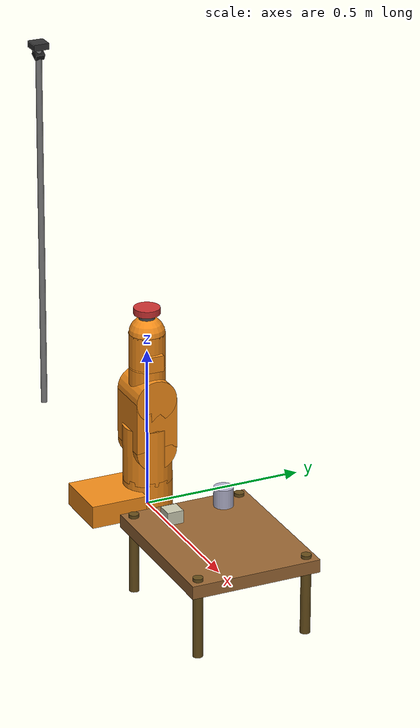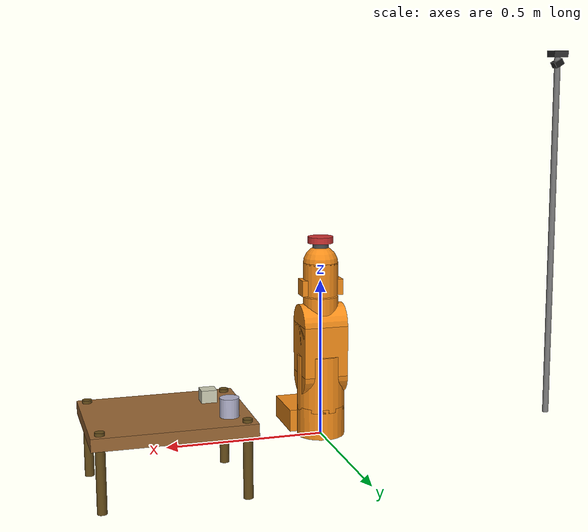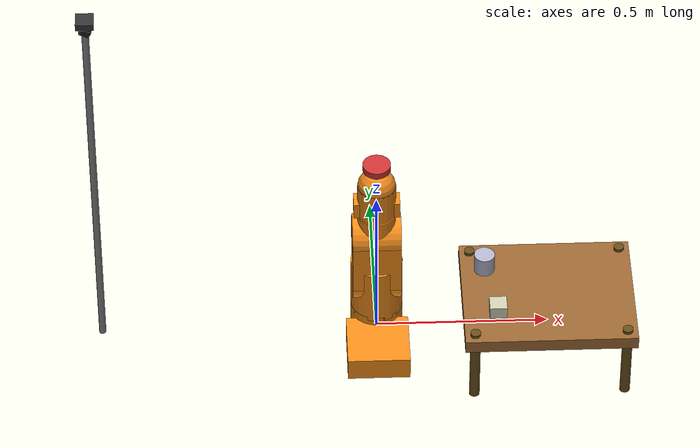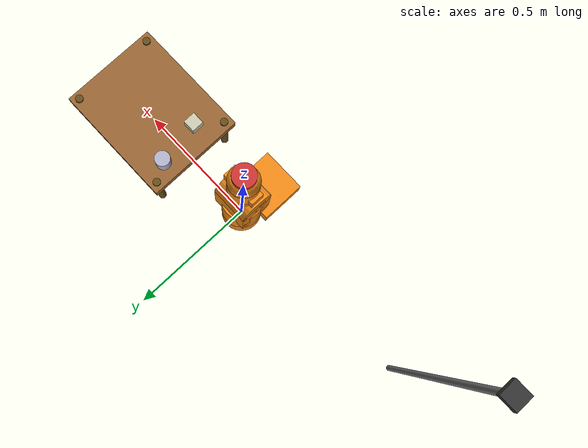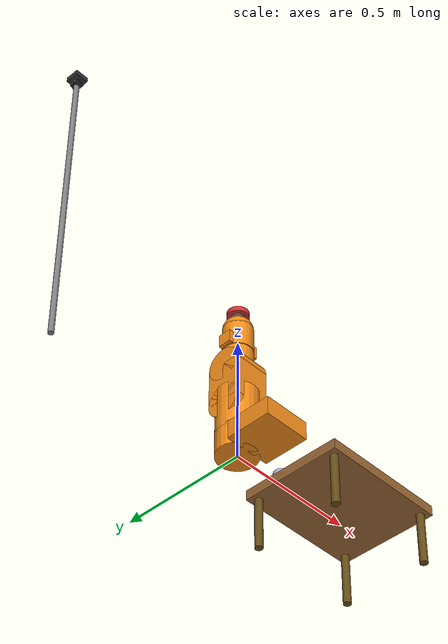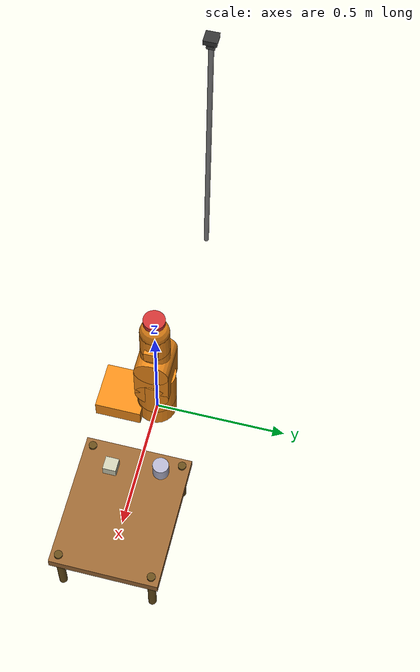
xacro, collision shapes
<?xml version="1.0"?>
<robot xmlns:xacro="http://www.ros.org/wiki/xacro" name="thor_arm">

    <xacro:arg name="is_sim" default="true"/>

    <xacro:include filename="$(find thor_urdf)/urdf/thor_gazebo.xacro" />

    <xacro:include filename="$(find thor_urdf)/urdf/thor_arm.ros2_control.xacro" />

    <xacro:property name="PI" value="3.14159265359" />
    <xacro:property name="effort" value="4.0" />
    <xacro:property name="velocity" value="1.0" />

    <xacro:macro name="default_inertial" params="mass">
        <inertial>
            <origin xyz="0 0 0" rpy="0 0 0"/>
            <mass value="${mass}" />
            <inertia ixx="1.0" ixy="0.0" ixz="0.0"
                     iyy="1.0" iyz="0.0"
                     izz="1.0" />
        </inertial>
    </xacro:macro>

    <!-- LINKS -->
    <link name="world"/>

    <link name="base_link">
        <xacro:default_inertial mass="1.0"/>
        <visual>
            <origin xyz="0 0 0" rpy="0 0 -${PI / 2}"/>
            <geometry>
              <mesh filename="package://thor_urdf/meshes/Base.dae" scale="0.001 0.001 0.001" />
            </geometry>
        </visual>
        <collision>
            <origin xyz="0 0 0.049" rpy="0 0 -${PI / 2}"/>
            <geometry>
                <cylinder radius="0.075" length="0.098"/>
            </geometry>
        </collision>
        <collision>
            <origin xyz="0 -0.1312686 0.035250" rpy="0 0 -${PI / 2}"/>
            <geometry>
                <box size="0.176 0.180 0.0705"/>
            </geometry>
        </collision>
    </link>

    <link name="link_1">
        <xacro:default_inertial mass="1.0"/>
        <visual>
            <origin xyz="0 0 0" rpy="0 0 -${PI / 2}"/>
            <geometry>
              <mesh filename="package://thor_urdf/meshes/Art1.dae" scale="0.001 0.001 0.001" />
            </geometry>
        </visual>
        <collision>
            <origin xyz="0 0 0.0765" rpy="0 0 -${PI / 2}"/>
            <geometry>
                <cylinder radius="0.075" length="0.179"/>
            </geometry>
        </collision>
    </link>

    <link name="link_2">
        <xacro:default_inertial mass="1.0"/>
        <visual>
            <origin xyz="0 0 0" rpy="0 0 -${PI / 2}"/>
            <geometry>
              <mesh filename="package://thor_urdf/meshes/Art2.dae" scale="0.001 0.001 0.001" />
            </geometry>
        </visual>
        <collision>
            <origin xyz="0 0 0" rpy="${PI / 2} 0 -${PI / 2}"/>
            <geometry>
                <cylinder radius="0.065" length="0.140"/>
            </geometry>
        </collision>
        <collision>
            <origin xyz="0 0 0.080" rpy="${PI / 2} 0 -${PI / 2}"/>
            <geometry>
                <box size="0.130 0.160 0.140"/>
            </geometry>
        </collision>
        <collision>
            <origin xyz="0 0 0.160" rpy="${PI / 2} 0 -${PI / 2}"/>
            <geometry>
                <cylinder radius="0.065" length="0.140"/>
            </geometry>
        </collision>
    </link>

    <link name="link_3">
        <xacro:default_inertial mass="1.0"/>
        <visual>
            <origin xyz="0 0 0" rpy="0 0 -${PI / 2}"/>
            <geometry>
              <mesh filename="package://thor_urdf/meshes/Art3.dae" scale="0.001 0.001 0.001" />
            </geometry>
        </visual>
        <collision>
            <origin xyz="0 0 0.01225" rpy="0 0 -${PI / 2}"/>
            <geometry>
                <cylinder radius="0.055" length="0.1525"/>
            </geometry>
        </collision>
    </link>

    <link name="link_4">
        <xacro:default_inertial mass="1.0"/>
        <visual>
            <origin xyz="0 0 0" rpy="0 0 -${PI / 2}"/>
            <geometry>
              <mesh filename="package://thor_urdf/meshes/Art4.dae" scale="0.001 0.001 0.001" />
            </geometry>
        </visual>
        <collision>
            <origin xyz="0 0 0.1045" rpy="0 0 -${PI / 2}"/>
            <geometry>
                <sphere radius="0.055"/>
            </geometry>
        </collision>
        <collision>
            <origin xyz="0 0 0.05525" rpy="0 0 -${PI / 2}"/>
            <geometry>
                <cylinder radius="0.055" length="0.1045"/>
            </geometry>
        </collision>
        <collision>
            <origin xyz="0 0 0.0295" rpy="0 0 -${PI / 2}"/>
            <geometry>
                <box size="0.050 0.132 0.050"/>
            </geometry>
        </collision>
    </link>

    <link name="link_5">
        <xacro:default_inertial mass="1.0"/>
        <visual>
            <origin xyz="0 0 0" rpy="0 0 -${PI / 2}"/>
            <geometry>
                <mesh filename="package://thor_urdf/meshes/Art5.dae" scale="0.001 0.001 0.001" />
            </geometry>
        </visual>
        <collision>
            <origin xyz="0 0 0" rpy="${PI / 2} 0 -${PI / 2}"/>
            <geometry>
                <cylinder radius="0.047" length="0.03"/>
            </geometry>
        </collision>
    </link>

    <link name="link_6">
        <xacro:default_inertial mass="1.0"/>
        <visual>
            <origin xyz="0 0 0" rpy="0 0 -${PI / 2}"/>
            <geometry>
                <mesh filename="package://thor_urdf/meshes/Art6.dae" scale="0.001 0.001 0.001" />
            </geometry>
        </visual>
        <collision>
            <origin xyz="0 0 0.025" rpy="0 0 -${PI / 2}"/>
            <geometry>
                <cylinder radius="0.015" length="0.05"/>
            </geometry>
        </collision>
    </link>

    <link name="electromagnet_mount">
        <xacro:default_inertial mass="0.2"/>
        <visual>
            <origin xyz="0 0 0" rpy="0 0 0"/>
            <geometry>
                <cylinder radius="0.025" length="0.015"/>
            </geometry>
            <material name="mount_material">
                <color rgba="0.3 0.3 0.3 1.0"/>
            </material>
        </visual>
        <collision>
            <origin xyz="0 0 0" rpy="0 0 0"/>
            <geometry>
                <cylinder radius="0.025" length="0.015"/>
            </geometry>
        </collision>
    </link>

    <link name="electromagnet_plate">
        <xacro:default_inertial mass="0.4"/>
        <visual>
            <origin xyz="0 0 0" rpy="0 0 0"/>
            <geometry>
                <cylinder radius="0.04" length="0.02"/>
            </geometry>
            <material name="magnet_material">
                <color rgba="0.8 0.2 0.2 1.0"/>
            </material>
        </visual>
        <collision>
            <origin xyz="0 0 0" rpy="0 0 0"/>
            <geometry>
                <cylinder radius="0.04" length="0.02"/>
            </geometry>
        </collision>
    </link>

    <link name="table_base">
        <inertial>
            <origin xyz="0 0 0" rpy="0 0 0"/>
            <mass value="10.0" />
            <inertia ixx="0.147" ixy="0.0" ixz="0.0"
                     iyy="0.213" iyz="0.0"
                     izz="0.347" />
        </inertial>
        <visual>
            <origin xyz="0 0 0" rpy="0 0 0"/>
            <geometry>
                <box size="0.5 0.4 0.04"/>
            </geometry>
            <material name="table_material">
                <color rgba="0.6 0.4 0.2 1.0"/>
            </material>
        </visual>
        <collision>
            <origin xyz="0 0 0" rpy="0 0 0"/>
            <geometry>
                <box size="0.5 0.4 0.04"/>
            </geometry>
        </collision>
    </link>

    <link name="table_leg_1">
        <inertial>
            <origin xyz="0 0 0" rpy="0 0 0"/>
            <mass value="2.0" />
            <inertia ixx="0.0085" ixy="0.0" ixz="0.0"
                     iyy="0.0085" iyz="0.0"
                     izz="0.0006" />
        </inertial>
        <visual>
            <origin xyz="0 0 0" rpy="0 0 0"/>
            <geometry>
                <cylinder radius="0.015" length="0.25"/>
            </geometry>
            <material name="leg_material">
                <color rgba="0.4 0.3 0.1 1.0"/>
            </material>
        </visual>
        <collision>
            <origin xyz="0 0 0" rpy="0 0 0"/>
            <geometry>
                <cylinder radius="0.015" length="0.25"/>
            </geometry>
        </collision>
    </link>

    <link name="table_leg_2">
        <inertial>
            <origin xyz="0 0 0" rpy="0 0 0"/>
            <mass value="2.0" />
            <inertia ixx="0.0085" ixy="0.0" ixz="0.0"
                     iyy="0.0085" iyz="0.0"
                     izz="0.0006" />
        </inertial>
        <visual>
            <origin xyz="0 0 0" rpy="0 0 0"/>
            <geometry>
                <cylinder radius="0.015" length="0.25"/>
            </geometry>
            <material name="leg_material">
                <color rgba="0.4 0.3 0.1 1.0"/>
            </material>
        </visual>
        <collision>
            <origin xyz="0 0 0" rpy="0 0 0"/>
            <geometry>
                <cylinder radius="0.015" length="0.25"/>
            </geometry>
        </collision>
    </link>

    <link name="table_leg_3">
        <inertial>
            <origin xyz="0 0 0" rpy="0 0 0"/>
            <mass value="2.0" />
            <inertia ixx="0.0085" ixy="0.0" ixz="0.0"
                     iyy="0.0085" iyz="0.0"
                     izz="0.0006" />
        </inertial>
        <visual>
            <origin xyz="0 0 0" rpy="0 0 0"/>
            <geometry>
                <cylinder radius="0.015" length="0.25"/>
            </geometry>
            <material name="leg_material">
                <color rgba="0.4 0.3 0.1 1.0"/>
            </material>
        </visual>
        <collision>
            <origin xyz="0 0 0" rpy="0 0 0"/>
            <geometry>
                <cylinder radius="0.015" length="0.25"/>
            </geometry>
        </collision>
    </link>

    <link name="table_leg_4">
        <inertial>
            <origin xyz="0 0 0" rpy="0 0 0"/>
            <mass value="2.0" />
            <inertia ixx="0.0085" ixy="0.0" ixz="0.0"
                     iyy="0.0085" iyz="0.0"
                     izz="0.0006" />
        </inertial>
        <visual>
            <origin xyz="0 0 0" rpy="0 0 0"/>
            <geometry>
                <cylinder radius="0.015" length="0.25"/>
            </geometry>
            <material name="leg_material">
                <color rgba="0.4 0.3 0.1 1.0"/>
            </material>
        </visual>
        <collision>
            <origin xyz="0 0 0" rpy="0 0 0"/>
            <geometry>
                <cylinder radius="0.015" length="0.25"/>
            </geometry>
        </collision>
    </link>

    <link name="metal_object_1">
        <xacro:default_inertial mass="0.3"/>
        <visual>
            <origin xyz="0 0 0" rpy="0 0 0"/>
            <geometry>
                <cylinder radius="0.03" length="0.06"/>
            </geometry>
            <material name="metal_material_1">
                <color rgba="0.7 0.7 0.8 1.0"/>
            </material>
        </visual>
        <collision>
            <origin xyz="0 0 0" rpy="0 0 0"/>
            <geometry>
                <cylinder radius="0.03" length="0.06"/>
            </geometry>
        </collision>
    </link>

    <link name="metal_object_2">
        <xacro:default_inertial mass="0.25"/>
        <visual>
            <origin xyz="0 0 0" rpy="0 0 0"/>
            <geometry>
                <box size="0.05 0.05 0.04"/>
            </geometry>
            <material name="metal_material_2">
                <color rgba="0.8 0.8 0.7 1.0"/>
            </material>
        </visual>
        <collision>
            <origin xyz="0 0 0" rpy="0 0 0"/>
            <geometry>
                <box size="0.05 0.05 0.04"/>
            </geometry>
        </collision>
    </link>

    <link name="camera_support_pole">
        <xacro:default_inertial mass="2.0"/>
        <visual>
            <origin xyz="0 0 0" rpy="0 0 0"/>
            <geometry>
                <cylinder radius="0.01" length="1.2"/>
            </geometry>
            <material name="pole_material">
                <color rgba="0.5 0.5 0.5 1.0"/>
            </material>
        </visual>
        <collision>
            <origin xyz="0 0 0" rpy="0 0 0"/>
            <geometry>
                <cylinder radius="0.01" length="1.2"/>
            </geometry>
        </collision>
    </link>

    <link name="camera_mount">
        <xacro:default_inertial mass="0.1"/>
        <visual>
            <origin xyz="0 0 0" rpy="0 0 0"/>
            <geometry>
                <box size="0.05 0.05 0.02"/>
            </geometry>
            <material name="camera_mount_material">
                <color rgba="0.2 0.2 0.2 1.0"/>
            </material>
        </visual>
        <collision>
            <origin xyz="0 0 0" rpy="0 0 0"/>
            <geometry>
                <box size="0.05 0.05 0.02"/>
            </geometry>
        </collision>
    </link>

    <link name="camera_link">
        <xacro:default_inertial mass="0.05"/>
        <visual>
            <origin xyz="0 0 0" rpy="0 0 0"/>
            <geometry>
                <box size="0.03 0.03 0.02"/>
            </geometry>
            <material name="camera_material">
                <color rgba="0.1 0.1 0.1 1.0"/>
            </material>
        </visual>
        <collision>
            <origin xyz="0 0 0" rpy="0 0 0"/>
            <geometry>
                <box size="0.03 0.03 0.02"/>
            </geometry>
        </collision>
    </link>

    <link name="camera_optical_frame">
        <xacro:default_inertial mass="0.001"/>
    </link>

    <joint name="virtual_joint" type="fixed">
        <parent link="world"/>
        <child link="base_link"/>
        <origin xyz="0 0 0" rpy="0 0 0"/>
    </joint>

    <joint name ="joint_1" type="revolute">
        <parent link="base_link"/>
        <child link="link_1"/>
        <origin xyz="0 0 0.099" rpy="0 0 0"/>
        <axis xyz="0 0 1"/>
        <limit lower="-2.967" upper="2.967"
               effort="${effort}" velocity="${velocity}"/>
    </joint>

    <joint name="joint_2" type="revolute">
        <parent link="link_1"/>
        <child link="link_2"/>
        <origin xyz="0 0 0.103" rpy="0 0 0"/>
        <axis xyz="1 0 0"/>
        <limit lower="-${PI / 2}" upper="${PI / 2}"
               effort="${effort}" velocity="${velocity}"/>
    </joint>

    <joint name="joint_3" type="revolute">
        <parent link="link_2"/>
        <child link="link_3"/>
        <origin xyz="0 0 0.16" rpy="0 0 0"/>
        <axis xyz="1 0 0"/>
        <limit lower="-${PI / 2}" upper="${PI / 2}"
               effort="${effort}" velocity="${velocity}"/>
    </joint>

    <joint name="joint_4" type="revolute">
        <parent link="link_3"/>
        <child link="link_4"/>
        <origin xyz="0 0 0.0895" rpy="0 0 0"/>
        <axis xyz="0 0 1"/>
        <limit lower="-2.967" upper="2.967"
               effort="${effort}" velocity="${velocity}"/>
    </joint>

    <joint name="joint_5" type="revolute">
        <parent link="link_4"/>
        <child link="link_5"/>
        <origin xyz="0 0 0.1045" rpy="0 0 0"/>
        <axis xyz="1 0 0"/>
        <limit lower="-${PI / 2}" upper="${PI / 2}"
               effort="${effort}" velocity="${velocity}"/>
      </joint>

    <joint name="joint_6" type="revolute">
        <parent link="link_5"/>
        <child link="link_6"/>
        <origin xyz="0 0 0.0135" rpy="0 0 0"/>
        <axis xyz="0 0 1"/>
        <limit lower="-2.967" upper="2.967"
               effort="${effort}" velocity="${velocity}"/>
    </joint>

    <joint name="link6_to_electromagnet_mount" type="fixed">
        <parent link="link_6"/>
        <child link="electromagnet_mount"/>
        <origin xyz="0 0 0.043" rpy="0 0 0"/>
    </joint>

    <joint name="electromagnet_mount_to_plate" type="fixed">
        <parent link="electromagnet_mount"/>
        <child link="electromagnet_plate"/>
        <origin xyz="0 0 0.0175" rpy="0 0 0"/>
    </joint>

 <joint name="world_to_table" type="fixed">
        <parent link="world"/>
        <child link="table_base"/>
        <origin xyz="0.5 0 0.095" rpy="0 0 0"/>
    </joint>

    <joint name="table_to_leg_1" type="fixed">
        <parent link="table_base"/>
        <child link="table_leg_1"/>
        <origin xyz="0.22 0.17 -0.095" rpy="0 0 0"/>
    </joint>

    <joint name="table_to_leg_2" type="fixed">
        <parent link="table_base"/>
        <child link="table_leg_2"/>
        <origin xyz="-0.22 0.17 -0.095" rpy="0 0 0"/>
    </joint>

    <joint name="table_to_leg_3" type="fixed">
        <parent link="table_base"/>
        <child link="table_leg_3"/>
        <origin xyz="0.22 -0.17 -0.095" rpy="0 0 0"/>
    </joint>

    <joint name="table_to_leg_4" type="fixed">
        <parent link="table_base"/>
        <child link="table_leg_4"/>
        <origin xyz="-0.22 -0.17 -0.095" rpy="0 0 0"/>
    </joint>
   <joint name="table_to_object_1" type="fixed">
        <parent link="table_base"/>
        <child link="metal_object_1"/>
        <origin xyz="-0.18 0.10 0.05" rpy="0 0 0"/>
    </joint>

    <joint name="table_to_object_2" type="fixed">
        <parent link="table_base"/>
        <child link="metal_object_2"/>
        <origin xyz="-0.15 -0.08 0.04" rpy="0 0 0"/>
    </joint>

    <joint name="world_to_camera_pole" type="fixed">
        <parent link="world"/>
        <child link="camera_support_pole"/>
        <origin xyz="-0.8 0 0.6" rpy="0 0 0"/>
    </joint>

    <joint name="pole_to_camera_mount" type="fixed">
        <parent link="camera_support_pole"/>
        <child link="camera_mount"/>
        <origin xyz="0 0 0.6" rpy="0 0 0"/>
    </joint>

    <joint name="mount_to_camera" type="fixed">
        <parent link="camera_mount"/>
        <child link="camera_link"/>
        <origin xyz="0 0 -0.03" rpy="0 0.5 0"/>
    </joint>

    <joint name="camera_to_optical_frame" type="fixed">
        <parent link="camera_link"/>
        <child link="camera_optical_frame"/>
        <origin xyz="0 0 0" rpy="-${PI/2} 0 -${PI/2}"/>
    </joint>

</robot>
